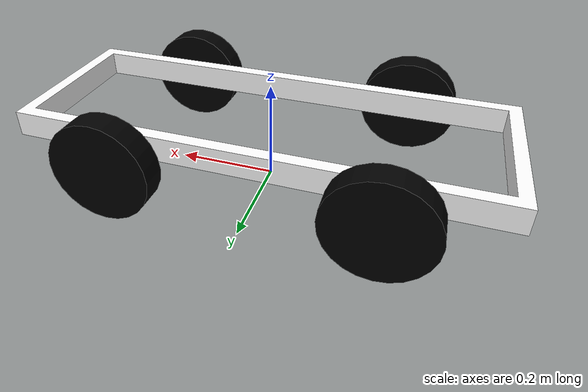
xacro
<?xml version="1.0"?>
<robot name="swap_bot" xmlns:xacro="http://ros.org/wiki/xacro">

  <xacro:property name="bwidth" value="0.35" />
  <xacro:property name="blength" value="0.9" />
  <xacro:property name="bheight" value=".05" />
  <xacro:property name="clearance" value="0.10" />
  <xacro:property name="wheelthick" value=".05" />
  <xacro:property name="wheeldiam" value=".2" />

   <xacro:macro name="default_inertial" params="mass">
    <inertial>
      <mass value="${mass}" />
      <inertia ixx="0.01" ixy="0.0" ixz="0.0" iyy="0.01" iyz="0.0" izz="0.01" />
    </inertial>
  </xacro:macro>

  <link name="base_link">
    <visual>
      <geometry>
	<mesh filename= "package://teleop/config/betterbase.stl" scale="0.0254 0.0254 0.0254"/>
      </geometry>
      <origin rpy="0 0 0" xyz="0 0 ${clearance}"/>
      <material name="white">
        <color rgba="1 1 1 1"/>
      </material>
    </visual>
    <collision>
      <geometry>
	<mesh filename= "package://teleop/config/betterbase.stl" scale="0.0254 0.0254 0.0254"/>
      </geometry>
      <origin rpy="0 0 0" xyz="0 0 ${clearance}"/>
      <material name="white">
        <color rgba="1 1 1 1"/>
      </material>
    </collision>
    <xacro:default_inertial mass="50"/>
  </link>

  <xacro:macro name="wheel" params="prefix suffix ref ref2">
    <link name="${prefix}_${suffix}_wheel">
      <visual>
        <origin xyz="0 0 0" rpy="0 0 0" />
        <geometry>
          <cylinder length="${wheelthick}" radius="${wheeldiam/2}"/>
        </geometry>
        <material name="black">
          <color rgba="0 0 0 1"/>
        </material>
      </visual>
      <collision>
        <origin xyz="0 0 0" rpy="0 0 0" />
        <geometry>
          <cylinder length="${wheelthick}" radius="${wheeldiam/2}"/>
        </geometry>
        <material name="black">
          <color rgba="0 0 0 1"/>
        </material>
      </collision>
      <xacro:default_inertial mass="1"/>
    </link>
    <joint name="${prefix}_${suffix}_wheel_joint" type="continuous">
      <axis xyz="0 0 ${ref}"/>
      <parent link="base_link"/>
      <child link="${prefix}_${suffix}_wheel"/>
      <origin xyz="${0.25*ref2} ${ref*(wheelthick/2+bwidth/2+0.01)} ${wheeldiam/2}"  rpy="${ref*pi/-2} 0 0" />
    </joint>

    <!-- This block provides the simulator (Gazebo) with information on a few additional
    physical properties. See http://gazebosim.org/tutorials/?tut=ros_urdf for more-->
    <gazebo reference="${prefix}_${suffix}_wheel">
      <fdir1 value="0 0 1"/>
      <mu1 value="0.1"/>
      <mu2 value="100"/>
      <kp value="10000000.0" />
      <kd value="1.0" />

      <material>Gazebo/Grey</material>
    </gazebo>

    <!-- This block connects the wheel joint to an actuator (motor), which informs both
    simulation and visualization of the robot -->
    <transmission name="${prefix}_${suffix}_wheel_trans">
      <type>transmission_interface/SimpleTransmission</type>
      <actuator name="${prefix}_${suffix}_wheel_motor">
        <mechanicalReduction>1</mechanicalReduction>
      </actuator>
      <joint name="${prefix}_${suffix}_wheel_joint">
        <hardwareInterface>hardware_interface/VelocityJointInterface</hardwareInterface>
      </joint>
    </transmission>
  </xacro:macro>

  <xacro:wheel prefix="left" suffix="front" ref="-1" ref2="1"/>
  <xacro:wheel prefix="left" suffix="back" ref="-1" ref2="-1"/>
  <xacro:wheel prefix="right" suffix="front" ref="1" ref2="1"/>
  <xacro:wheel prefix="right" suffix="back" ref="1" ref2="-1"/>

    <!-- Gazebo plugin for ROS Control -->
  <gazebo>
    <plugin name="gazebo_ros_control" filename="libgazebo_ros_control.so">
      <robotNamespace>/</robotNamespace>
    </plugin>
  </gazebo>

</robot>
